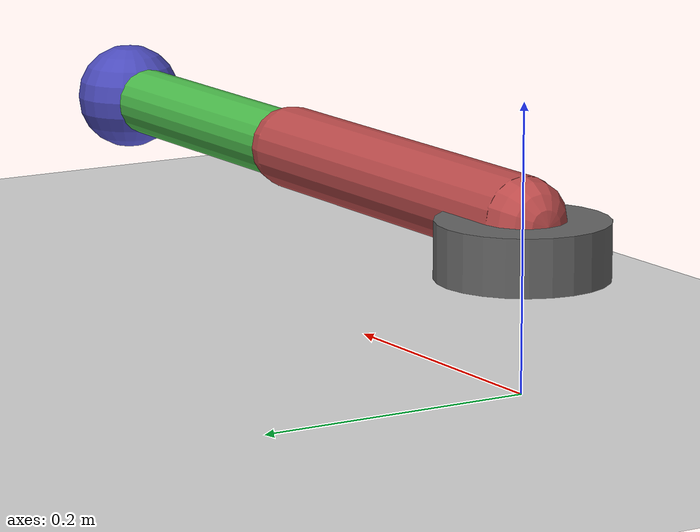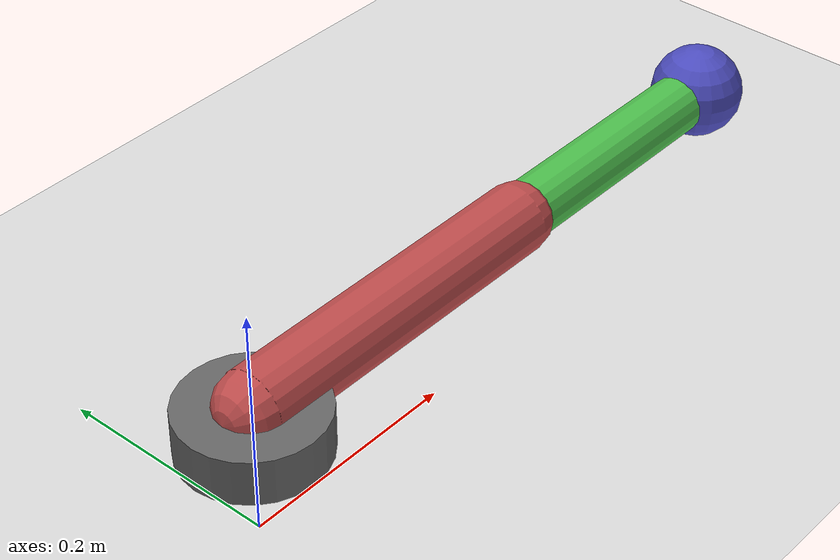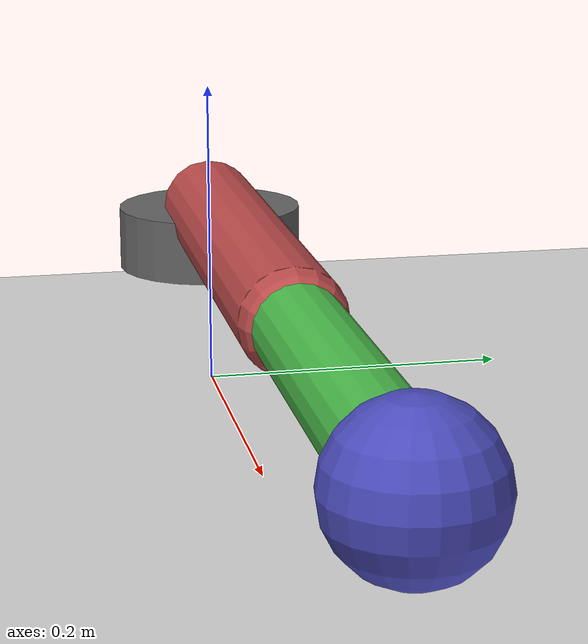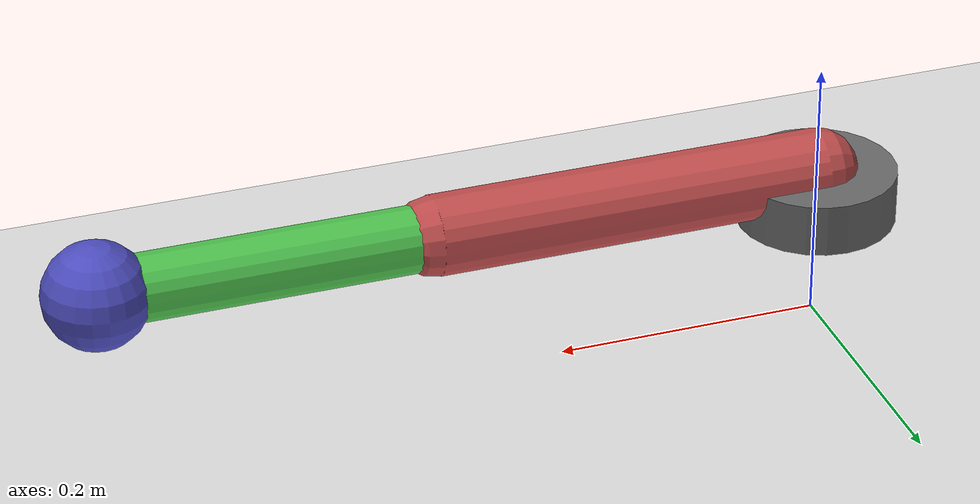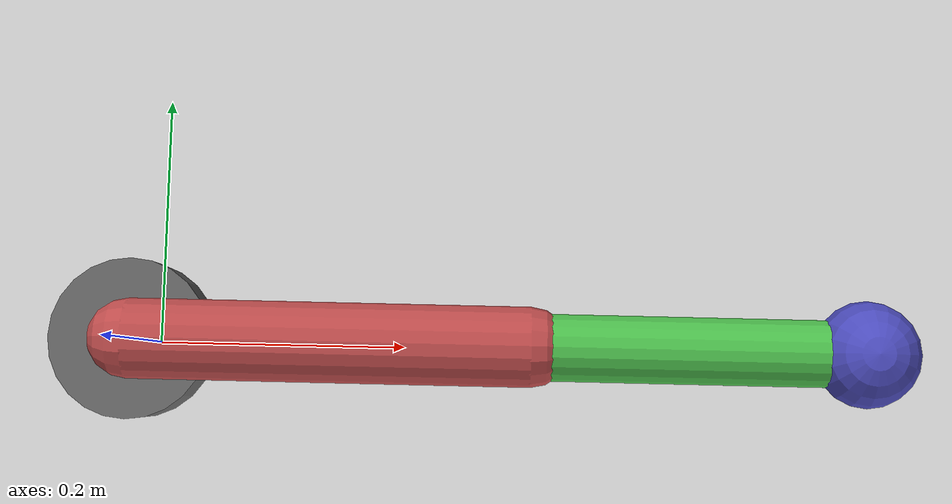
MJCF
<mujoco model="cyborg_arm_v0_2dof">
  <option gravity="0 0 -9.81" timestep="0.002"/>

  <worldbody>
    <light pos="0 0 3" dir="0 0 -1"/>
    <geom name="floor" type="plane" size="2 2 0.1" rgba="0.85 0.85 0.85 1"/>

    <body name="base" pos="0 0 0.1">
      <geom name="base_geom" type="cylinder" size="0.06 0.02" rgba="0.4 0.4 0.4 1"/>

      <body name="link1" pos="0 0 0.02">
        <joint name="joint1" type="hinge" axis="0 0 1" range="-180 180" damping="0.1"/>
        <geom name="link1_geom" type="capsule" fromto="0 0 0 0.3 0 0" size="0.03" rgba="0.75 0.3 0.3 1"/>

        <body name="link2" pos="0.3 0 0">
          <joint name="joint2" type="hinge" axis="0 0 1" range="-180 180" damping="0.1"/>
          <geom name="link2_geom" type="capsule" fromto="0 0 0 0.25 0 0" size="0.025" rgba="0.3 0.75 0.3 1"/>

          <body name="end_effector" pos="0.25 0 0">
            <geom name="ee" type="sphere" size="0.04" rgba="0.3 0.3 0.75 1"/>
          </body>
        </body>
      </body>
    </body>
  </worldbody>

  <actuator>
    <motor name="motor1" joint="joint1" gear="1" ctrlrange="-2 2"/>
    <motor name="motor2" joint="joint2" gear="1" ctrlrange="-2 2"/>
  </actuator>
</mujoco>
